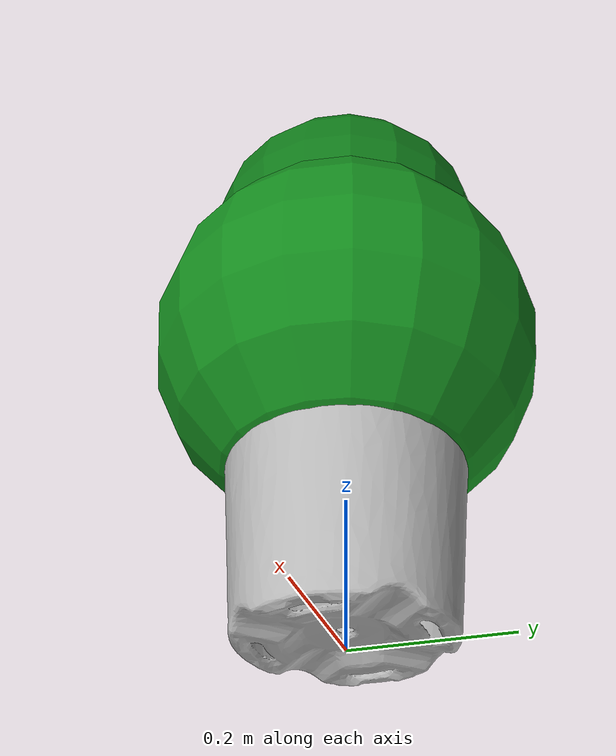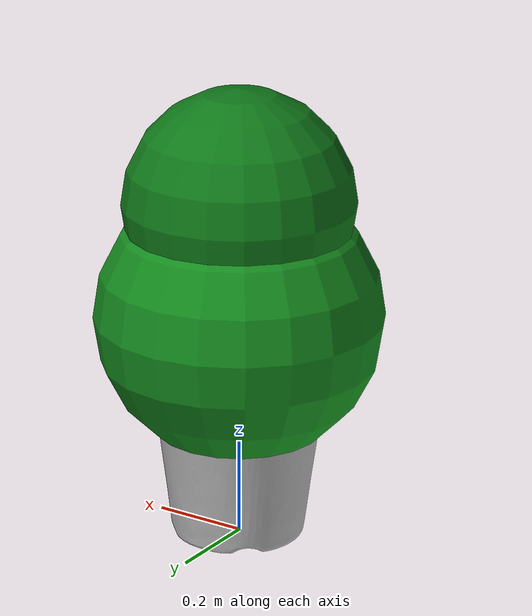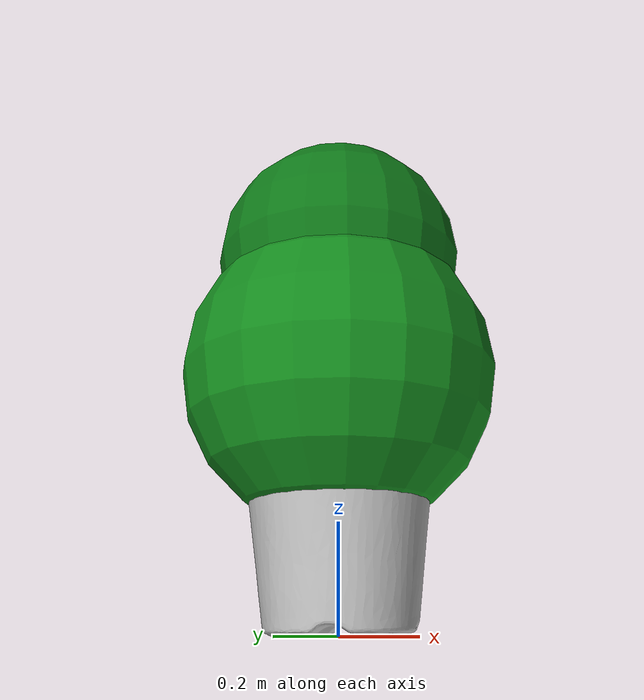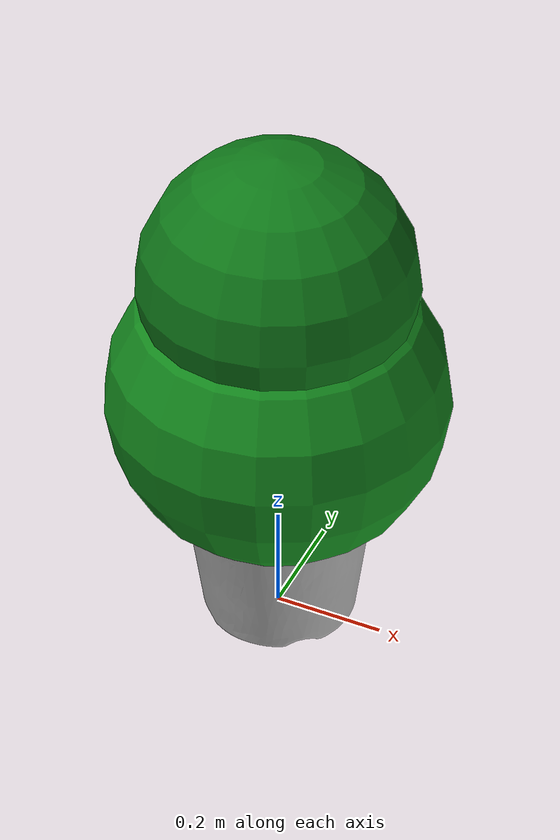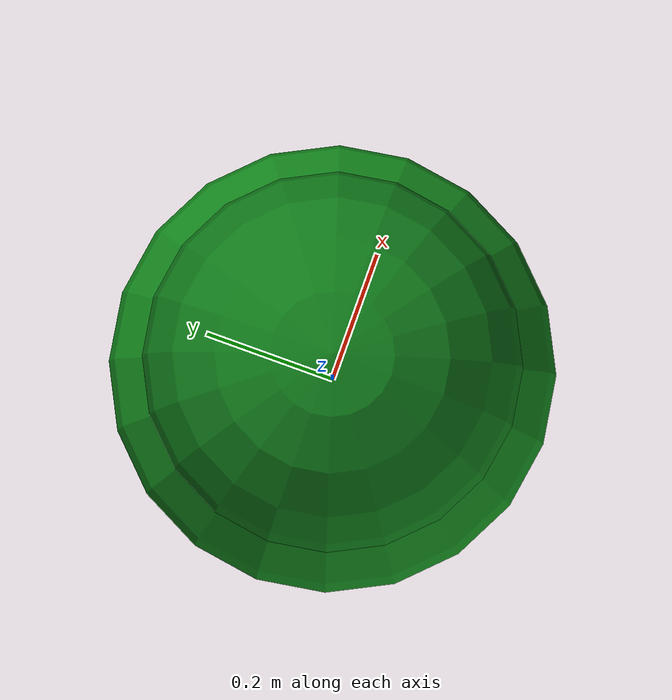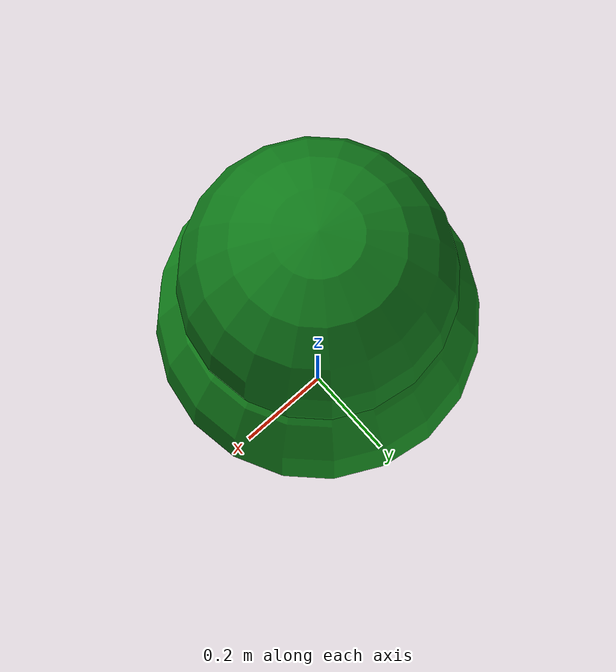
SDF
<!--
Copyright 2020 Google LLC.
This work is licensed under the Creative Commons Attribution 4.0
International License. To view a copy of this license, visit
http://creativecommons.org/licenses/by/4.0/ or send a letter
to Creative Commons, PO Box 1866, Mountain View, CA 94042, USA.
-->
<?xml version="1.0" ?>
<sdf version="1.6">
  <model name="potted_plant">
    <static>true</static>
    <link name="link_0">
      <visual name="pot_visual">
        <geometry>
          <mesh>
            <uri>meshes/model.obj</uri>
            <scale>4.5 4.5 4.5</scale>
          </mesh>
        </geometry>
      </visual>
      <visual name="foliage_lower">
        <pose>0 0 0.48 0 0 0</pose>
        <geometry><sphere><radius>0.30</radius></sphere></geometry>
        <material><ambient>0.05 0.35 0.08 1</ambient><diffuse>0.08 0.55 0.12 1</diffuse></material>
      </visual>
      <visual name="foliage_upper">
        <pose>0 0 0.72 0 0 0</pose>
        <geometry><sphere><radius>0.24</radius></sphere></geometry>
        <material><ambient>0.04 0.30 0.07 1</ambient><diffuse>0.06 0.48 0.10 1</diffuse></material>
      </visual>
      <collision name="plant_collision">
        <pose>0 0 0.43 0 0 0</pose>
        <geometry><cylinder><radius>0.30</radius><length>0.86</length></cylinder></geometry>
      </collision>
    </link>
  </model>
</sdf>
